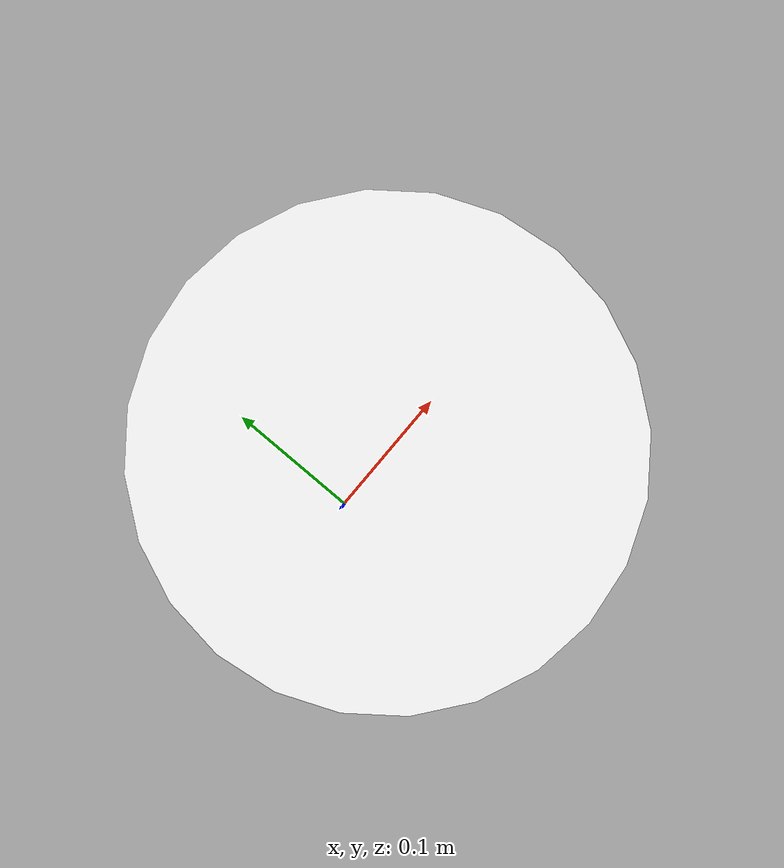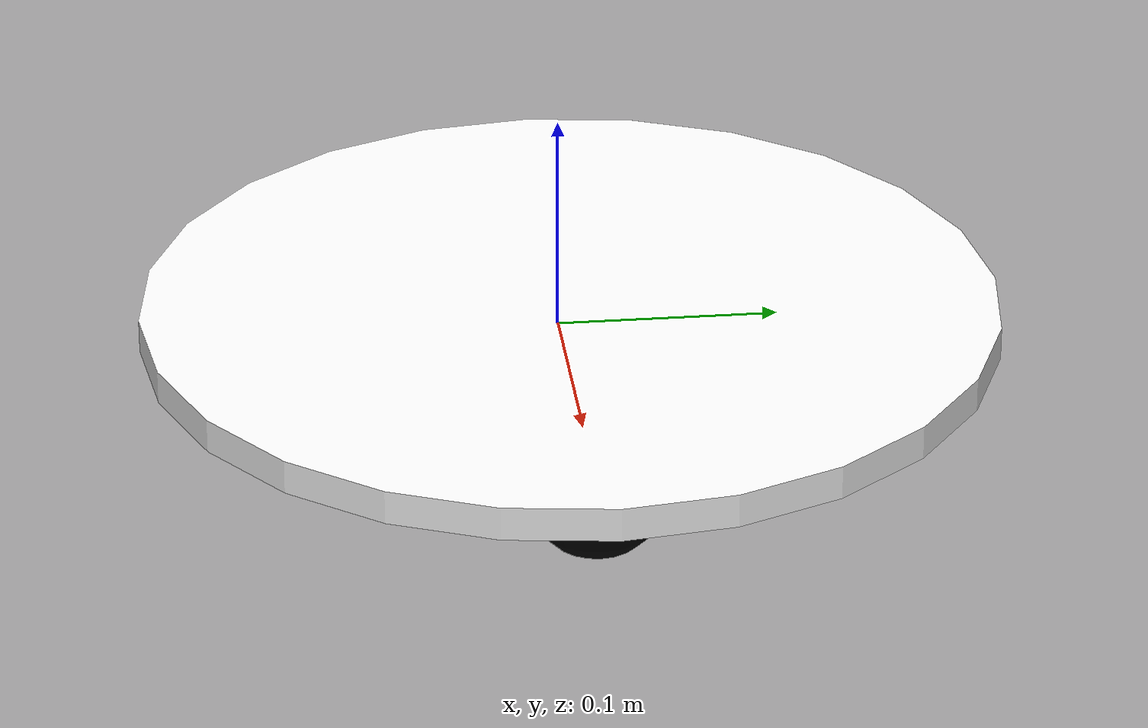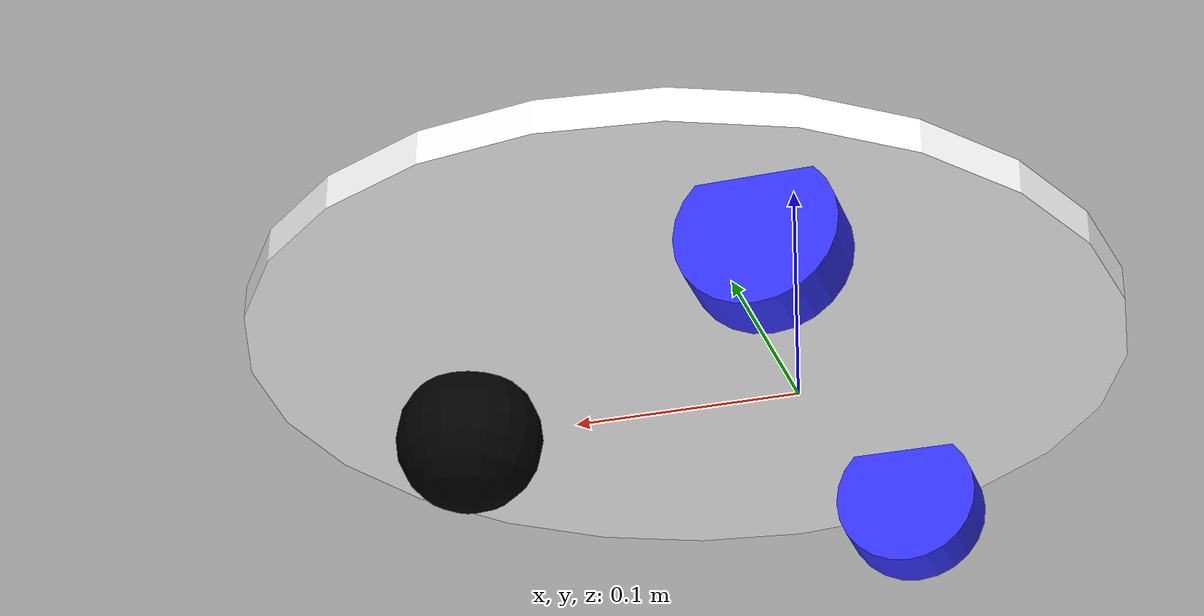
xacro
<?xml version="1.0"?>
<robot xmlns:xacro="http://www.ros.org/wiki/xacro">

    <xacro:include filename="inertial_macros.xacro" />

    <material name="white">
        <color rgba="1 1 1 1"/>
    </material>

    <material name="orange">
        <color rgba="1 0.3 0.1 1"/>
    </material>

    <material name="blue">
        <color rgba="0.2 0.2 1 1"/>
    </material>

    <material name="black">
        <color rgba="0 0 0 1"/>
    </material>

    <material name="red">
        <color rgba="1 0 0 1"/>
    </material>

<!-- BASE LINK -->
    <link name="base_link">

    </link>

<!--BASE_FOOTPRINT LINK-->

    <joint name="base_footprint_joint" type="fixed">
        <parent link="base_link"/>
        <child link="base_footprint"/>
        <origin xyz="0 0 0" rpy="0 0 0"/>
    </joint>

    <link name="base_footprint">
    </link>

<!-- CHASSIS LINK -->
    <joint name="chassis_joint" type="fixed">
        <parent link="base_link"/>
        <child link="chassis"/>
        <origin xyz="-0.1 0 0"/>
    </joint>

    <link name="chassis">
        <visual>
            <origin xyz="0.15 0 0.03" rpy="0 0 0"/>
            <geometry>
                <cylinder length="0.015" radius="0.19" />
            </geometry>
            <material name="white"/>
        </visual>
        <collision>
            <origin xyz="0.15 0 0.03" rpy="0 0 0"/>
            <geometry>
                <cylinder length="0.005" radius="0.19" />
            </geometry>
        </collision>
        <xacro:inertial_cylinder mass="4.0" length="0.015" radius="0.19">
            <origin xyz="0.15 0 0.03" rpy="0 0 0"/>
        </xacro:inertial_cylinder>
    </link>

    <gazebo reference="chassis">
        <material>Gazebo/White</material>
    </gazebo>
<!-- LEFT WHEEL LINK -->
    <joint name="left_wheel_joint" type="continuous">
        <parent link="base_link"/>
        <child link="left_wheel"/>
        <origin xyz="-0.02 0.125 0" rpy="-${pi/2} 0 0"/>
        <axis xyz="0 0 1"/>
    </joint>

    <link name="left_wheel">
        <visual>
            <geometry>
                <cylinder length="0.025" radius="0.0325" />
            </geometry>
            <material name="blue"/>
        </visual>
        <collision>
            <geometry>
                <cylinder length="0.025" radius="0.0325" />
            </geometry>
        </collision>
        <xacro:inertial_cylinder mass="0.1" length="0.025" radius="0.0325">
            <origin xyz="0 0 0" rpy="0 0 0"/>
        </xacro:inertial_cylinder>
    </link>

    <gazebo reference="left_wheel">
        <material>Gazebo/Blue</material>
    </gazebo>
<!-- RIGHT WHEEL LINK -->

    <joint name="right_wheel_joint" type="continuous">
        <parent link="base_link"/>
        <child link="right_wheel"/>
        <origin xyz="-0.02 -0.125 0" rpy="${pi/2} 0 0"/>
        <axis xyz="0 0 -1"/>
    </joint>

    <link name="right_wheel">
        <visual>
            <geometry>
                <cylinder length="0.025" radius="0.0325" />
            </geometry>
            <material name="blue"/>
        </visual>
        <collision>
            <geometry>
                <cylinder length="0.025" radius="0.0325" />
            </geometry>
        </collision>

        <xacro:inertial_sphere mass="0.1" radius="0.325">
            <origin xyz="0 0 0" rpy="0 0 0"/>
        </xacro:inertial_sphere>
    </link>
    <gazebo reference="right_wheel">
        <material>Gazebo/Blue</material>
    </gazebo>

<!-- CASTER WHEEL LINK -->

    <joint name="caster_wheel_joint" type="fixed">
        <parent link="chassis"/>
        <child link="caster_wheel"/>
        <origin xyz="0.25 0 0" rpy="0 0 0"/>
    </joint>

    <link name="caster_wheel">
        <visual>
            <geometry>
                <sphere radius="0.0325" />
            </geometry>
            <material name="black"/>
        </visual>
        <collision>
            <geometry>
                <sphere radius="0.0325" />
            </geometry>
            <material name="black"/>
        </collision>
        <xacro:inertial_sphere mass="0.1" radius="0.0325">
            <origin xyz="0 0 0" rpy="0 0 0"/>
        </xacro:inertial_sphere>
    </link>
    <gazebo reference="caster_wheel">
        <material>Gazebo/Black</material>
        <mu1 value="0"/>
        <mu2 value="0"/>
    </gazebo>

</robot>
